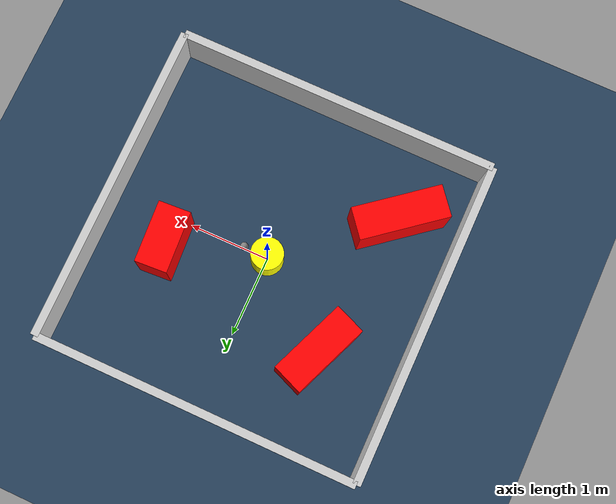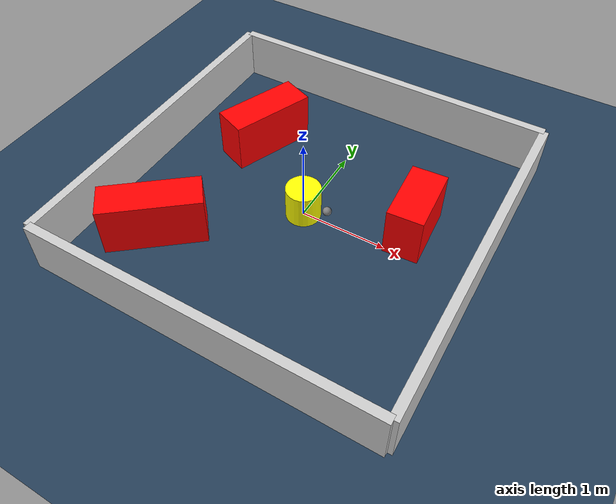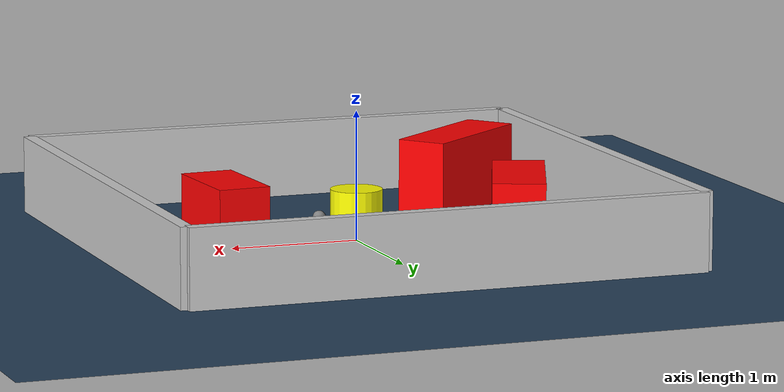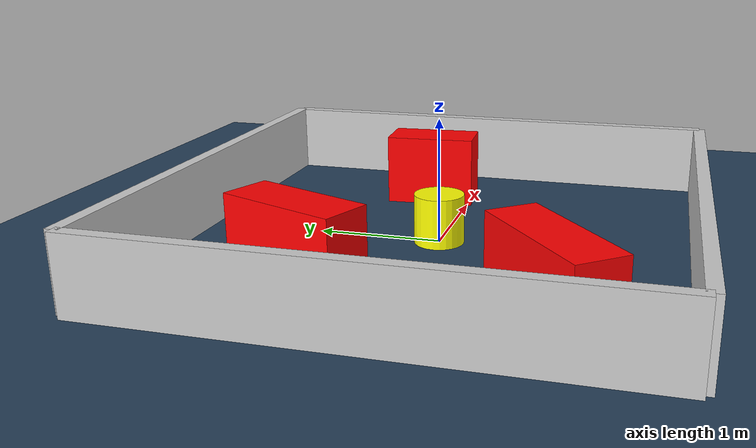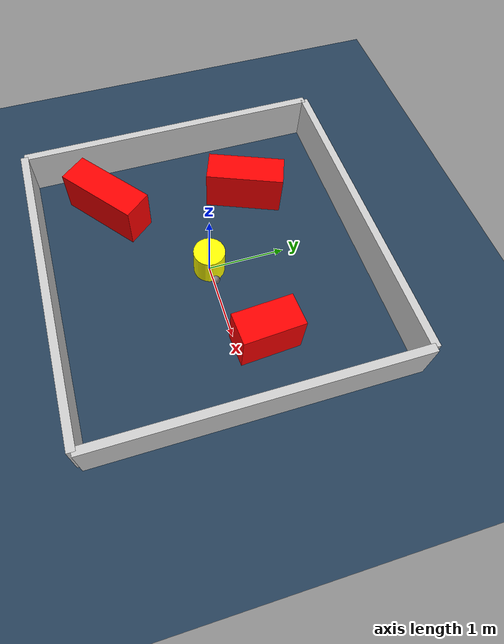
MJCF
<?xml version="1.0" ?>
<mujoco model="generated_environment">
  <option timestep="0.01" integrator="RK4" cone="elliptic"/>
  <default>
    <geom density="1"/>
  </default>
  <asset>
    <texture builtin="gradient" height="3072" rgb1="0.3 0.5 0.7" rgb2="0 0 0" type="skybox" width="512"/>
    <texture builtin="checker" height="300" mark="edge" markrgb="0.8 0.8 0.8" name="groundplane" rgb1="0.2 0.3 0.4" rgb2="0.1 0.2 0.3" type="2d" width="300"/>
    <material name="groundplane" reflectance="0.2" texrepeat="5 5" texture="groundplane" texuniform="true"/>
    <material name="robot" rgba="0.0 1.0 0.0 1"/>
  </asset>
  <worldbody>
    <light dir="0 0 -1" directional="true" pos="0 0 1.5"/>
    <geom condim="4" friction="1.0 0.005 0.001" material="groundplane" name="floor" size="0 0 0.05" type="plane"/>
    <body name="walls">
      <geom name="wall_1" condim="4" pos="-2.0 0.0 0.3" rgba="0.800000011920929 0.800000011920929 0.800000011920929 1.0" size="0.05 2.0 0.3" type="box"/>
      <geom name="wall_2" condim="4" pos="2.0 0.0 0.3" rgba="0.800000011920929 0.800000011920929 0.800000011920929 1.0" size="0.05 2.0 0.3" type="box"/>
      <geom name="wall_3" condim="4" pos="0.0 -2.0 0.3" rgba="0.800000011920929 0.800000011920929 0.800000011920929 1.0" size="2.0 0.05 0.3" type="box"/>
      <geom name="wall_4" condim="4" pos="0.0 2.0 0.3" rgba="0.800000011920929 0.800000011920929 0.800000011920929 1.0" size="2.0 0.05 0.3" type="box"/>
    </body>
    <body name="robot">
      <joint name="joint_x" type="slide" pos="0 0 0" axis="1 0 0"/>
      <joint name="joint_y" type="slide" pos="0 0 0" axis="0 1 0"/>
      <geom name="robot" type="sphere" pos="0.3 0.0 0.2" size="0.05" mass="5." friction="1.0 0.005 0.0001" condim="4" rgba="0.5 0.5 0.5 1.0"/>
      <site name="sensor_ball"/>
    </body>
    <body name="obstacle_movable_1">
      <geom name="obstacle_movable_1" condim="4" pos="0.0 0.0 0.2" euler="0 0 0.0" friction="1.0 0.005 0.001" rgba="1.0 1.0 0.0 1.0" size="0.2 0.2 0.0" type="cylinder" mass="0.1"/>
      <joint type="free"/>
    </body>
    <body name="obstacle_2_static">
      <geom name="obstacle_2_static" condim="4" pos="1.1664638050204332 0.35623900260119856 0.3" euler="0 0 93.71350185557057" friction="1.0 0.005 0.001" rgba="1 0 0 1" size="0.38201491216518946 0.2 0.3" type="box"/>
    </body>
    <body name="obstacle_3_static">
      <geom name="obstacle_3_static" condim="4" pos="-1.0065341232830547 0.7925341960499666 0.3" euler="0 0 68.17327998439124" friction="1.0 0.005 0.001" rgba="1 0 0 1" size="0.502731680561691 0.2 0.3" type="box"/>
    </body>
    <body name="obstacle_4_static">
      <geom name="obstacle_4_static" condim="4" pos="-1.2291514455671675 -1.059000276925662 0.3" euler="0 0 39.033513162929864" friction="1.0 0.005 0.001" rgba="1 0 0 1" size="0.5526825682407805 0.2 0.3" type="box"/>
    </body>
  </worldbody>
  <actuator>
    <motor name="actuator_x" joint="joint_x" gear="1" ctrlrange="-1 1"/>
    <motor name="actuator_y" joint="joint_y" gear="1" ctrlrange="-1 1"/>
  </actuator>
</mujoco>
